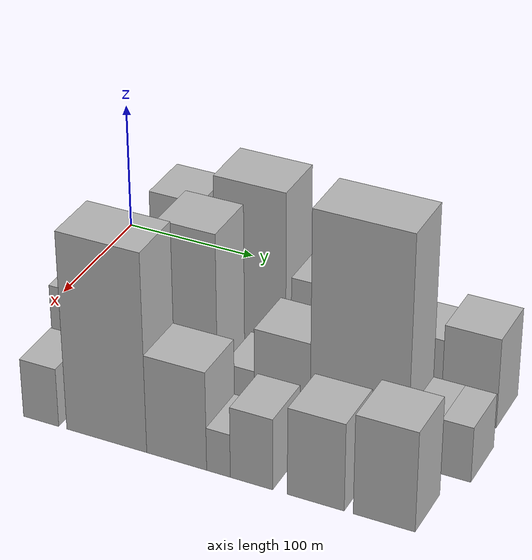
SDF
<sdf version="1.6">
 <world name="default">
  <model name="building_19">
   <static>1</static>
   <pose>100.0000 42.9198 0 0.000000 0.000000 0.000000</pose>
   <link name="link">
    <pose>0 0 22.50 0 0 0</pose>
    <collision name="collision"><geometry><box><size>40.0000 23.3706 45.0000</size></box></geometry></collision>
    <visual name="visual">
     <cast_shadows>0</cast_shadows>
     <geometry><box><size>40.0000 23.3706 45.0000</size></box></geometry>
     <material>
      <script>
       <uri>model://HANNAS_wall/materials/scripts</uri>
       <uri>model://HANNAS_wall/materials/textures</uri>
       <name>vrc/HANNAS_wall</name>
      </script>
     </material>
    </visual>
   </link>
  </model>
  <model name="building_20">
   <static>1</static>
   <pose>100.0000 63.7424 0 0.000000 0.000000 0.000000</pose>
   <link name="link">
    <pose>0 0 7.50 0 0 0</pose>
    <collision name="collision"><geometry><box><size>40.0000 6.2745 15.0000</size></box></geometry></collision>
    <visual name="visual">
     <cast_shadows>0</cast_shadows>
     <geometry><box><size>40.0000 6.2745 15.0000</size></box></geometry>
     <material>
      <script>
       <uri>model://HANNAS_wall/materials/scripts</uri>
       <uri>model://HANNAS_wall/materials/textures</uri>
       <name>vrc/HANNAS_wall</name>
      </script>
     </material>
    </visual>
   </link>
  </model>
  <model name="building_21">
   <static>1</static>
   <pose>100.0000 74.7954 0 0.000000 0.000000 0.000000</pose>
   <link name="link">
    <pose>0 0 15.00 0 0 0</pose>
    <collision name="collision"><geometry><box><size>40.0000 15.8314 30.0000</size></box></geometry></collision>
    <visual name="visual">
     <cast_shadows>0</cast_shadows>
     <geometry><box><size>40.0000 15.8314 30.0000</size></box></geometry>
     <material>
      <script>
       <uri>model://HANNAS_wall/materials/scripts</uri>
       <uri>model://HANNAS_wall/materials/textures</uri>
       <name>vrc/HANNAS_wall</name>
      </script>
     </material>
    </visual>
   </link>
  </model>
  <model name="building_22">
   <static>1</static>
   <pose>100.0000 101.5277 0 0.000000 0.000000 0.000000</pose>
   <link name="link">
    <pose>0 0 57.00 0 0 0</pose>
    <collision name="collision"><geometry><box><size>40.0000 37.6332 114.0000</size></box></geometry></collision>
    <visual name="visual">
     <cast_shadows>0</cast_shadows>
     <geometry><box><size>40.0000 37.6332 114.0000</size></box></geometry>
     <material>
      <script>
       <uri>model://HANNAS_wall/materials/scripts</uri>
       <uri>model://HANNAS_wall/materials/textures</uri>
       <name>vrc/HANNAS_wall</name>
      </script>
     </material>
    </visual>
   </link>
  </model>
  <model name="building_23">
   <static>1</static>
   <pose>100.0000 156.4455 0 0.000000 0.000000 0.000000</pose>
   <link name="link">
    <pose>0 0 69.00 0 0 0</pose>
    <collision name="collision"><geometry><box><size>40.0000 52.2026 138.0000</size></box></geometry></collision>
    <visual name="visual">
     <cast_shadows>0</cast_shadows>
     <geometry><box><size>40.0000 52.2026 138.0000</size></box></geometry>
     <material>
      <script>
       <uri>model://HANNAS_wall/materials/scripts</uri>
       <uri>model://HANNAS_wall/materials/textures</uri>
       <name>vrc/HANNAS_wall</name>
      </script>
     </material>
    </visual>
   </link>
  </model>
  <model name="building_24">
   <static>1</static>
   <pose>100.0000 207.1209 0 0.000000 0.000000 0.000000</pose>
   <link name="link">
    <pose>0 0 37.50 0 0 0</pose>
    <collision name="collision"><geometry><box><size>40.0000 41.1482 75.0000</size></box></geometry></collision>
    <visual name="visual">
     <cast_shadows>0</cast_shadows>
     <geometry><box><size>40.0000 41.1482 75.0000</size></box></geometry>
     <material>
      <script>
       <uri>model://HANNAS_wall/materials/scripts</uri>
       <uri>model://HANNAS_wall/materials/textures</uri>
       <name>vrc/HANNAS_wall</name>
      </script>
     </material>
    </visual>
   </link>
  </model>
  <model name="building_25">
   <static>1</static>
   <pose>100.0000 246.7359 0 0.000000 0.000000 0.000000</pose>
   <link name="link">
    <pose>0 0 36.00 0 0 0</pose>
    <collision name="collision"><geometry><box><size>40.0000 38.0818 72.0000</size></box></geometry></collision>
    <visual name="visual">
     <cast_shadows>0</cast_shadows>
     <geometry><box><size>40.0000 38.0818 72.0000</size></box></geometry>
     <material>
      <script>
       <uri>model://HANNAS_wall/materials/scripts</uri>
       <uri>model://HANNAS_wall/materials/textures</uri>
       <name>vrc/HANNAS_wall</name>
      </script>
     </material>
    </visual>
   </link>
  </model>
  <model name="building_26">
   <static>1</static>
   <pose>100.0000 280.0626 0 0.000000 0.000000 0.000000</pose>
   <link name="link">
    <pose>0 0 28.50 0 0 0</pose>
    <collision name="collision"><geometry><box><size>40.0000 28.5716 57.0000</size></box></geometry></collision>
    <visual name="visual">
     <cast_shadows>0</cast_shadows>
     <geometry><box><size>40.0000 28.5716 57.0000</size></box></geometry>
     <material>
      <script>
       <uri>model://HANNAS_wall/materials/scripts</uri>
       <uri>model://HANNAS_wall/materials/textures</uri>
       <name>vrc/HANNAS_wall</name>
      </script>
     </material>
    </visual>
   </link>
  </model>
  <model name="building_27">
   <static>1</static>
   <pose>100.0000 313.5556 0 0.000000 0.000000 0.000000</pose>
   <link name="link">
    <pose>0 0 34.50 0 0 0</pose>
    <collision name="collision"><geometry><box><size>40.0000 38.4144 69.0000</size></box></geometry></collision>
    <visual name="visual">
     <cast_shadows>0</cast_shadows>
     <geometry><box><size>40.0000 38.4144 69.0000</size></box></geometry>
     <material>
      <script>
       <uri>model://HANNAS_wall/materials/scripts</uri>
       <uri>model://HANNAS_wall/materials/textures</uri>
       <name>vrc/HANNAS_wall</name>
      </script>
     </material>
    </visual>
   </link>
  </model>
  <model name="building_51">
   <static>1</static>
   <pose>160.0000 55.0556 0 0.000000 0.000000 0.000000</pose>
   <link name="link">
    <pose>0 0 31.50 0 0 0</pose>
    <collision name="collision"><geometry><box><size>40.0000 33.3329 63.0000</size></box></geometry></collision>
    <visual name="visual">
     <cast_shadows>0</cast_shadows>
     <geometry><box><size>40.0000 33.3329 63.0000</size></box></geometry>
     <material>
      <script>
       <uri>model://HANNAS_wall/materials/scripts</uri>
       <uri>model://HANNAS_wall/materials/textures</uri>
       <name>vrc/HANNAS_wall</name>
      </script>
     </material>
    </visual>
   </link>
  </model>
  <model name="building_52">
   <static>1</static>
   <pose>160.0000 94.7414 0 0.000000 0.000000 0.000000</pose>
   <link name="link">
    <pose>0 0 24.00 0 0 0</pose>
    <collision name="collision"><geometry><box><size>40.0000 26.0387 48.0000</size></box></geometry></collision>
    <visual name="visual">
     <cast_shadows>0</cast_shadows>
     <geometry><box><size>40.0000 26.0387 48.0000</size></box></geometry>
     <material>
      <script>
       <uri>model://HANNAS_wall/materials/scripts</uri>
       <uri>model://HANNAS_wall/materials/textures</uri>
       <name>vrc/HANNAS_wall</name>
      </script>
     </material>
    </visual>
   </link>
  </model>
  <model name="building_53">
   <static>1</static>
   <pose>160.0000 114.3317 0 0.000000 0.000000 0.000000</pose>
   <link name="link">
    <pose>0 0 13.50 0 0 0</pose>
    <collision name="collision"><geometry><box><size>40.0000 13.1419 27.0000</size></box></geometry></collision>
    <visual name="visual">
     <cast_shadows>0</cast_shadows>
     <geometry><box><size>40.0000 13.1419 27.0000</size></box></geometry>
     <material>
      <script>
       <uri>model://HANNAS_wall/materials/scripts</uri>
       <uri>model://HANNAS_wall/materials/textures</uri>
       <name>vrc/HANNAS_wall</name>
      </script>
     </material>
    </visual>
   </link>
  </model>
  <model name="building_54">
   <static>1</static>
   <pose>160.0000 141.3945 0 0.000000 0.000000 0.000000</pose>
   <link name="link">
    <pose>0 0 67.50 0 0 0</pose>
    <collision name="collision"><geometry><box><size>40.0000 40.9837 135.0000</size></box></geometry></collision>
    <visual name="visual">
     <cast_shadows>0</cast_shadows>
     <geometry><box><size>40.0000 40.9837 135.0000</size></box></geometry>
     <material>
      <script>
       <uri>model://HANNAS_wall/materials/scripts</uri>
       <uri>model://HANNAS_wall/materials/textures</uri>
       <name>vrc/HANNAS_wall</name>
      </script>
     </material>
    </visual>
   </link>
  </model>
  <model name="building_55">
   <static>1</static>
   <pose>160.0000 177.6371 0 0.000000 0.000000 0.000000</pose>
   <link name="link">
    <pose>0 0 19.50 0 0 0</pose>
    <collision name="collision"><geometry><box><size>40.0000 21.5014 39.0000</size></box></geometry></collision>
    <visual name="visual">
     <cast_shadows>0</cast_shadows>
     <geometry><box><size>40.0000 21.5014 39.0000</size></box></geometry>
     <material>
      <script>
       <uri>model://HANNAS_wall/materials/scripts</uri>
       <uri>model://HANNAS_wall/materials/textures</uri>
       <name>vrc/HANNAS_wall</name>
      </script>
     </material>
    </visual>
   </link>
  </model>
  <model name="building_56">
   <static>1</static>
   <pose>160.0000 208.1683 0 0.000000 0.000000 0.000000</pose>
   <link name="link">
    <pose>0 0 36.00 0 0 0</pose>
    <collision name="collision"><geometry><box><size>40.0000 39.5610 72.0000</size></box></geometry></collision>
    <visual name="visual">
     <cast_shadows>0</cast_shadows>
     <geometry><box><size>40.0000 39.5610 72.0000</size></box></geometry>
     <material>
      <script>
       <uri>model://HANNAS_wall/materials/scripts</uri>
       <uri>model://HANNAS_wall/materials/textures</uri>
       <name>vrc/HANNAS_wall</name>
      </script>
     </material>
    </visual>
   </link>
  </model>
  <model name="building_57">
   <static>1</static>
   <pose>160.0000 261.7664 0 0.000000 0.000000 0.000000</pose>
   <link name="link">
    <pose>0 0 85.50 0 0 0</pose>
    <collision name="collision"><geometry><box><size>40.0000 67.6354 171.0000</size></box></geometry></collision>
    <visual name="visual">
     <cast_shadows>0</cast_shadows>
     <geometry><box><size>40.0000 67.6354 171.0000</size></box></geometry>
     <material>
      <script>
       <uri>model://HANNAS_wall/materials/scripts</uri>
       <uri>model://HANNAS_wall/materials/textures</uri>
       <name>vrc/HANNAS_wall</name>
      </script>
     </material>
    </visual>
   </link>
  </model>
  <model name="building_58">
   <static>1</static>
   <pose>160.0000 306.4378 0 0.000000 0.000000 0.000000</pose>
   <link name="link">
    <pose>0 0 21.00 0 0 0</pose>
    <collision name="collision"><geometry><box><size>40.0000 21.7074 42.0000</size></box></geometry></collision>
    <visual name="visual">
     <cast_shadows>0</cast_shadows>
     <geometry><box><size>40.0000 21.7074 42.0000</size></box></geometry>
     <material>
      <script>
       <uri>model://HANNAS_wall/materials/scripts</uri>
       <uri>model://HANNAS_wall/materials/textures</uri>
       <name>vrc/HANNAS_wall</name>
      </script>
     </material>
    </visual>
   </link>
  </model>
  <model name="building_59">
   <static>1</static>
   <pose>160.0000 327.9131 0 0.000000 0.000000 0.000000</pose>
   <link name="link">
    <pose>0 0 21.00 0 0 0</pose>
    <collision name="collision"><geometry><box><size>40.0000 21.2432 42.0000</size></box></geometry></collision>
    <visual name="visual">
     <cast_shadows>0</cast_shadows>
     <geometry><box><size>40.0000 21.2432 42.0000</size></box></geometry>
     <material>
      <script>
       <uri>model://HANNAS_wall/materials/scripts</uri>
       <uri>model://HANNAS_wall/materials/textures</uri>
       <name>vrc/HANNAS_wall</name>
      </script>
     </material>
    </visual>
   </link>
  </model>
  <model name="building_85">
   <static>1</static>
   <pose>220.0000 63.7403 0 0.000000 0.000000 0.000000</pose>
   <link name="link">
    <pose>0 0 22.50 0 0 0</pose>
    <collision name="collision"><geometry><box><size>40.0000 26.3126 45.0000</size></box></geometry></collision>
    <visual name="visual">
     <cast_shadows>0</cast_shadows>
     <geometry><box><size>40.0000 26.3126 45.0000</size></box></geometry>
     <material>
      <script>
       <uri>model://HANNAS_wall/materials/scripts</uri>
       <uri>model://HANNAS_wall/materials/textures</uri>
       <name>vrc/HANNAS_wall</name>
      </script>
     </material>
    </visual>
   </link>
  </model>
  <model name="building_86">
   <static>1</static>
   <pose>220.0000 112.1204 0 0.000000 0.000000 0.000000</pose>
   <link name="link">
    <pose>0 0 75.00 0 0 0</pose>
    <collision name="collision"><geometry><box><size>40.0000 58.4477 150.0000</size></box></geometry></collision>
    <visual name="visual">
     <cast_shadows>0</cast_shadows>
     <geometry><box><size>40.0000 58.4477 150.0000</size></box></geometry>
     <material>
      <script>
       <uri>model://HANNAS_wall/materials/scripts</uri>
       <uri>model://HANNAS_wall/materials/textures</uri>
       <name>vrc/HANNAS_wall</name>
      </script>
     </material>
    </visual>
   </link>
  </model>
  <model name="building_87">
   <static>1</static>
   <pose>220.0000 162.6892 0 0.000000 0.000000 0.000000</pose>
   <link name="link">
    <pose>0 0 37.50 0 0 0</pose>
    <collision name="collision"><geometry><box><size>40.0000 42.6900 75.0000</size></box></geometry></collision>
    <visual name="visual">
     <cast_shadows>0</cast_shadows>
     <geometry><box><size>40.0000 42.6900 75.0000</size></box></geometry>
     <material>
      <script>
       <uri>model://HANNAS_wall/materials/scripts</uri>
       <uri>model://HANNAS_wall/materials/textures</uri>
       <name>vrc/HANNAS_wall</name>
      </script>
     </material>
    </visual>
   </link>
  </model>
  <model name="building_88">
   <static>1</static>
   <pose>220.0000 192.3381 0 0.000000 0.000000 0.000000</pose>
   <link name="link">
    <pose>0 0 16.50 0 0 0</pose>
    <collision name="collision"><geometry><box><size>40.0000 16.6078 33.0000</size></box></geometry></collision>
    <visual name="visual">
     <cast_shadows>0</cast_shadows>
     <geometry><box><size>40.0000 16.6078 33.0000</size></box></geometry>
     <material>
      <script>
       <uri>model://HANNAS_wall/materials/scripts</uri>
       <uri>model://HANNAS_wall/materials/textures</uri>
       <name>vrc/HANNAS_wall</name>
      </script>
     </material>
    </visual>
   </link>
  </model>
  <model name="building_89">
   <static>1</static>
   <pose>220.0000 215.3568 0 0.000000 0.000000 0.000000</pose>
   <link name="link">
    <pose>0 0 27.00 0 0 0</pose>
    <collision name="collision"><geometry><box><size>40.0000 29.4296 54.0000</size></box></geometry></collision>
    <visual name="visual">
     <cast_shadows>0</cast_shadows>
     <geometry><box><size>40.0000 29.4296 54.0000</size></box></geometry>
     <material>
      <script>
       <uri>model://HANNAS_wall/materials/scripts</uri>
       <uri>model://HANNAS_wall/materials/textures</uri>
       <name>vrc/HANNAS_wall</name>
      </script>
     </material>
    </visual>
   </link>
  </model>
  <model name="building_90">
   <static>1</static>
   <pose>220.0000 259.3738 0 0.000000 0.000000 0.000000</pose>
   <link name="link">
    <pose>0 0 33.00 0 0 0</pose>
    <collision name="collision"><geometry><box><size>40.0000 38.6043 66.0000</size></box></geometry></collision>
    <visual name="visual">
     <cast_shadows>0</cast_shadows>
     <geometry><box><size>40.0000 38.6043 66.0000</size></box></geometry>
     <material>
      <script>
       <uri>model://HANNAS_wall/materials/scripts</uri>
       <uri>model://HANNAS_wall/materials/textures</uri>
       <name>vrc/HANNAS_wall</name>
      </script>
     </material>
    </visual>
   </link>
  </model>
  <model name="building_91">
   <static>1</static>
   <pose>220.0000 305.1838 0 0.000000 0.000000 0.000000</pose>
   <link name="link">
    <pose>0 0 37.50 0 0 0</pose>
    <collision name="collision"><geometry><box><size>40.0000 41.0159 75.0000</size></box></geometry></collision>
    <visual name="visual">
     <cast_shadows>0</cast_shadows>
     <geometry><box><size>40.0000 41.0159 75.0000</size></box></geometry>
     <material>
      <script>
       <uri>model://HANNAS_wall/materials/scripts</uri>
       <uri>model://HANNAS_wall/materials/textures</uri>
       <name>vrc/HANNAS_wall</name>
      </script>
     </material>
    </visual>
   </link>
  </model>
 </world>
</sdf>
